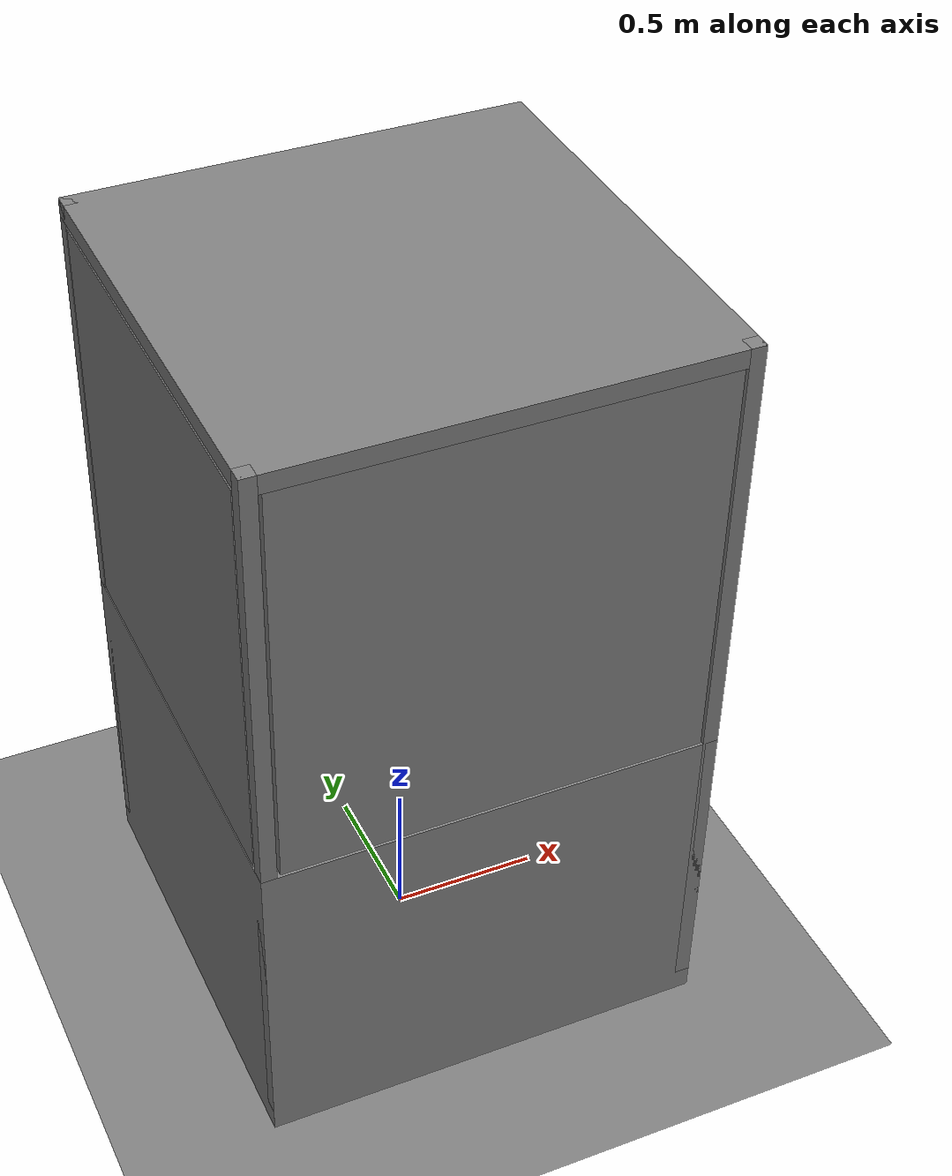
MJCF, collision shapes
<mujoco model="rack_insert_world">
  <compiler angle="radian" />
  <option gravity="0 0 -9.8" magnetic="5.5645e-06 2.28758e-05 -4.23884e-05" />
  <visual>
    <headlight ambient="0 0 0" diffuse="0 0 0" specular="0 0 0" />
  </visual>
  <default>
    <default class="world_default" />
    <default class="cable_default">
      <joint damping="0.2" />
    </default>
    <default class="sc_port_default">
      <geom friction="0.5 0.5" />
    </default>
    <default class="nic_card_default">
      <geom friction="0.1 0.005 0.1" />
    </default>
  </default>
  <extension>
    <plugin plugin="mujoco.elasticity.cable">
      <instance name="composite">
        <config key="twist" value="1e-1" />
        <config key="bend" value="1e-1" />
      </instance>
    </plugin>
  </extension>
  <asset>
    <texture type="2d" colorspace="linear" name="texture_40c09d03e70381a6858aaba3470a3c41133384b4031fa9131cbb5f4dc5cd3986_floor_visual_Plane" file="40c09d03e70381a6858aaba3470a3c41133384b4031fa9131cbb5f4dc5cd3986_floor_visual_b3a94635-54d6beff6424435d3828cb4c8a1278d9ea3964b0.png" />
    <texture type="2d" colorspace="linear" name="texture_905de86c942092710a3b3b7c801a4a971c55ce1db8e8e66de2d222bccbf68920_sc_plug_visual_merged_0" file="905de86c942092710a3b3b7c801a4a971c55ce1db8e8e66de2d222bccbf68920_sc_plug_visual_5875f865-48f62b2f4840d852c7f39a01e6c183037dc1485b.png" />
    <texture type="2d" colorspace="linear" name="texture_98c00f0bc914fd28942a5b5b497872ae817e62fdc7c7810ecaa8069a9692ceaf_lc_plug_visual_merged_0" file="98c00f0bc914fd28942a5b5b497872ae817e62fdc7c7810ecaa8069a9692ceaf_lc_plug_visual_03dabf32-0905e8a8aa368516e682f6ec84258100cdb4efef.png" />
    <texture type="2d" colorspace="linear" name="texture_bac71237ef67393fcec4e1a5deb385aa5fe0d294b7e1711efc530aa1463ef5d6_sfp_module_visual_Body.005" file="bac71237ef67393fcec4e1a5deb385aa5fe0d294b7e1711efc530aa1463ef5d6_sfp_module_visual_8fc63b58-7471eafc55dcb668ae68adfe70a147b363ba3be9.png" />
    <texture type="2d" colorspace="linear" name="texture_bac71237ef67393fcec4e1a5deb385aa5fe0d294b7e1711efc530aa1463ef5d6_sfp_module_visual_Body.005_1" file="bac71237ef67393fcec4e1a5deb385aa5fe0d294b7e1711efc530aa1463ef5d6_sfp_module_visual_1f09e86a-a4dc4a72bd6e778067310898a5c179607fd78966.png" />
    <material name="material_e35a3160deff872a7475b59ee7dfb4969f85c5fc103de22f82442b320b077c85_enclosure_visual_V1014952.001" class="world_default" shininess="30" rgba="0.290196 0.290196 0.290196 1" />
    <material name="material_e35a3160deff872a7475b59ee7dfb4969f85c5fc103de22f82442b320b077c85_enclosure_visual_V1014952.001_1" class="world_default" shininess="30" rgba="0.129412 0.129412 0.133333 1" />
    <material name="material_e35a3160deff872a7475b59ee7dfb4969f85c5fc103de22f82442b320b077c85_light_visual_Plane.001" class="world_default" shininess="30" rgba="0.5 0.5 0.5 1" />
    <material name="material_40c09d03e70381a6858aaba3470a3c41133384b4031fa9131cbb5f4dc5cd3986_floor_visual_Plane" class="world_default" texture="texture_40c09d03e70381a6858aaba3470a3c41133384b4031fa9131cbb5f4dc5cd3986_floor_visual_Plane" shininess="30" rgba="0.5 0.5 0.5 1" />
    <material name="material_40c09d03e70381a6858aaba3470a3c41133384b4031fa9131cbb5f4dc5cd3986_walls_visual_Curve.001" class="world_default" shininess="30" rgba="0.0196078 0.0196078 0.0196078 1" />
    <material name="material_40c09d03e70381a6858aaba3470a3c41133384b4031fa9131cbb5f4dc5cd3986_walls_visual_merged_1" class="world_default" shininess="30" rgba="0.262745 0.262745 0.262745 1" />
    <material name="material_40c09d03e70381a6858aaba3470a3c41133384b4031fa9131cbb5f4dc5cd3986_walls_visual_Plane.003_1" class="world_default" shininess="30" rgba="0.8 0.8 0.8 1" />
    <material name="material_40c09d03e70381a6858aaba3470a3c41133384b4031fa9131cbb5f4dc5cd3986_walls_visual_Plane.002" class="world_default" shininess="30" rgba="0.207843 0.207843 0.207843 1" />
    <material name="material_905de86c942092710a3b3b7c801a4a971c55ce1db8e8e66de2d222bccbf68920_sc_plug_visual_merged_0" class="world_default" texture="texture_905de86c942092710a3b3b7c801a4a971c55ce1db8e8e66de2d222bccbf68920_sc_plug_visual_merged_0" shininess="30" rgba="0.5 0.5 0.5 1" />
    <material name="material_98c00f0bc914fd28942a5b5b497872ae817e62fdc7c7810ecaa8069a9692ceaf_lc_plug_visual_merged_0" class="world_default" texture="texture_98c00f0bc914fd28942a5b5b497872ae817e62fdc7c7810ecaa8069a9692ceaf_lc_plug_visual_merged_0" shininess="30" rgba="0.5 0.5 0.5 1" />
    <material name="material_bac71237ef67393fcec4e1a5deb385aa5fe0d294b7e1711efc530aa1463ef5d6_sfp_module_visual_Body.005" class="world_default" texture="texture_bac71237ef67393fcec4e1a5deb385aa5fe0d294b7e1711efc530aa1463ef5d6_sfp_module_visual_Body.005" shininess="30" rgba="0.5 0.5 0.5 1" />
    <material name="material_bac71237ef67393fcec4e1a5deb385aa5fe0d294b7e1711efc530aa1463ef5d6_sfp_module_visual_Body.005_1" class="world_default" texture="texture_bac71237ef67393fcec4e1a5deb385aa5fe0d294b7e1711efc530aa1463ef5d6_sfp_module_visual_Body.005_1" shininess="30" rgba="0.5 0.5 0.5 1" />
    <material name="material_7689a9b747d6b156977e79b2206b5e29540e3d66cde22b2879e5c8aaf9f30d90_base_visual_ISO_4762_-_M3_x_8.019" class="world_default" shininess="30" rgba="0.0352941 0.0352941 0.0313726 1" />
    <material name="material_7689a9b747d6b156977e79b2206b5e29540e3d66cde22b2879e5c8aaf9f30d90_base_visual_ISO_4762_-_M3_x_8.019_1" class="world_default" shininess="30" rgba="0.0313726 0.0313726 0.0313726 1" />
    <material name="material_7689a9b747d6b156977e79b2206b5e29540e3d66cde22b2879e5c8aaf9f30d90_base_visual_ISO_4762_-_M3_x_8.019_2" class="world_default" shininess="30" rgba="0.215686 0 0.215686 1" />
    <mesh name="e35a3160deff872a7475b59ee7dfb4969f85c5fc103de22f82442b320b077c85_enclosure_visual_V1014952.001" class="world_default" content_type="model/obj" file="e35a3160deff872a7475b59ee7dfb4969f85c5fc103de22f82442b320b077c85_enclosure_visual_V1014952.001-c990efe7b9dfe87aa065fd6eb3960ce051ae2aef.obj" inertia="shell" />
    <mesh name="e35a3160deff872a7475b59ee7dfb4969f85c5fc103de22f82442b320b077c85_enclosure_visual_V1014952.001_1" class="world_default" content_type="model/obj" file="e35a3160deff872a7475b59ee7dfb4969f85c5fc103de22f82442b320b077c85_enclosure_visual_V1014952.001_1-807e07de06af157c84b994a232617507a7059420.obj" inertia="shell" />
    <mesh name="e35a3160deff872a7475b59ee7dfb4969f85c5fc103de22f82442b320b077c85_light_visual_Plane.001" class="world_default" content_type="model/obj" file="e35a3160deff872a7475b59ee7dfb4969f85c5fc103de22f82442b320b077c85_light_visual_Plane.001-a8a774a80bc239d73769a498eae528b206eebcb0.obj" inertia="shell" />
    <mesh name="40c09d03e70381a6858aaba3470a3c41133384b4031fa9131cbb5f4dc5cd3986_floor_visual_Plane" class="world_default" content_type="model/obj" file="40c09d03e70381a6858aaba3470a3c41133384b4031fa9131cbb5f4dc5cd3986_floor_visual_Plane-4dc7f6150ad7c239769a0860a01efb2015657aea.obj" inertia="shell" />
    <mesh name="40c09d03e70381a6858aaba3470a3c41133384b4031fa9131cbb5f4dc5cd3986_walls_visual_Curve.001" class="world_default" content_type="model/obj" file="40c09d03e70381a6858aaba3470a3c41133384b4031fa9131cbb5f4dc5cd3986_walls_visual_Curve.001-4d7c79ac2e958832fdb15589262141ca1b80d3a5.obj" inertia="shell" />
    <mesh name="40c09d03e70381a6858aaba3470a3c41133384b4031fa9131cbb5f4dc5cd3986_walls_visual_merged_1" class="world_default" content_type="model/obj" file="40c09d03e70381a6858aaba3470a3c41133384b4031fa9131cbb5f4dc5cd3986_walls_visual_merged_1-359a22140d528747936e80bedf90e1437a177a9f.obj" inertia="shell" />
    <mesh name="40c09d03e70381a6858aaba3470a3c41133384b4031fa9131cbb5f4dc5cd3986_walls_visual_Plane.003_1" class="world_default" content_type="model/obj" file="40c09d03e70381a6858aaba3470a3c41133384b4031fa9131cbb5f4dc5cd3986_walls_visual_Plane.003_1-cd05ed21fa19a2784fb772d7519abf7c31c8b85f.obj" inertia="shell" />
    <mesh name="40c09d03e70381a6858aaba3470a3c41133384b4031fa9131cbb5f4dc5cd3986_walls_visual_Plane.002" class="world_default" content_type="model/obj" file="40c09d03e70381a6858aaba3470a3c41133384b4031fa9131cbb5f4dc5cd3986_walls_visual_Plane.002-ee4f781765eec46c2256d941981732d4b1857f24.obj" inertia="shell" />
    <mesh name="905de86c942092710a3b3b7c801a4a971c55ce1db8e8e66de2d222bccbf68920_sc_plug_visual_merged_0" class="world_default" content_type="model/obj" file="905de86c942092710a3b3b7c801a4a971c55ce1db8e8e66de2d222bccbf68920_sc_plug_visual_merged_0-67f94accf247f722dd4954d7448d7956402901f2.obj" inertia="shell" />
    <mesh name="98c00f0bc914fd28942a5b5b497872ae817e62fdc7c7810ecaa8069a9692ceaf_lc_plug_visual_merged_0" class="world_default" content_type="model/obj" file="98c00f0bc914fd28942a5b5b497872ae817e62fdc7c7810ecaa8069a9692ceaf_lc_plug_visual_merged_0-fdaf59710fc3cc118a7df05add4ff4205edda4ef.obj" inertia="shell" />
    <mesh name="bac71237ef67393fcec4e1a5deb385aa5fe0d294b7e1711efc530aa1463ef5d6_sfp_module_visual_Body.005" class="world_default" content_type="model/obj" file="bac71237ef67393fcec4e1a5deb385aa5fe0d294b7e1711efc530aa1463ef5d6_sfp_module_visual_Body.005-f93147e1e403de321fb70c06a4b1e00f20feb9fd.obj" inertia="shell" />
    <mesh name="bac71237ef67393fcec4e1a5deb385aa5fe0d294b7e1711efc530aa1463ef5d6_sfp_module_visual_Body.005_1" class="world_default" content_type="model/obj" file="bac71237ef67393fcec4e1a5deb385aa5fe0d294b7e1711efc530aa1463ef5d6_sfp_module_visual_Body.005_1-4af964a95522e2593eb6381eca4f09ef239782c7.obj" inertia="shell" />
    <mesh name="7689a9b747d6b156977e79b2206b5e29540e3d66cde22b2879e5c8aaf9f30d90_base_visual_ISO_4762_-_M3_x_8.019" class="world_default" content_type="model/obj" file="7689a9b747d6b156977e79b2206b5e29540e3d66cde22b2879e5c8aaf9f30d90_base_visual_ISO_4762_-_M3_x_8.019-f814bb518c42769543ab6246809f3fe4af5c2b64.obj" inertia="shell" />
    <mesh name="7689a9b747d6b156977e79b2206b5e29540e3d66cde22b2879e5c8aaf9f30d90_base_visual_ISO_4762_-_M3_x_8.019_1" class="world_default" content_type="model/obj" file="7689a9b747d6b156977e79b2206b5e29540e3d66cde22b2879e5c8aaf9f30d90_base_visual_ISO_4762_-_M3_x_8.019_1-0b276ba9910a7642121235b62d2afc47c3995782.obj" inertia="shell" />
    <mesh name="7689a9b747d6b156977e79b2206b5e29540e3d66cde22b2879e5c8aaf9f30d90_base_visual_ISO_4762_-_M3_x_8.019_2" class="world_default" content_type="model/obj" file="7689a9b747d6b156977e79b2206b5e29540e3d66cde22b2879e5c8aaf9f30d90_base_visual_ISO_4762_-_M3_x_8.019_2-7b96569be9572803417c5650ee83c9c883b44191.obj" inertia="shell" />
  </asset>
  <worldbody>
    <light name="enclosure_light" class="world_default" pos="0 0 2.5" dir="0 0 -1" intensity="0.4" range="2" attenuation="1 0.01 0.001" cutoff="114.592" exponent="0.993023" diffuse="1 1 1" specular="0.1 0.1 0.1" />
    <light name="ceiling_01" class="world_default" pos="2 2 6" dir="0 0 -1" intensity="2" range="9" castshadow="false" attenuation="1 0.01 0.001" cutoff="360" diffuse="1 1 1" specular="0.1 0.1 0.1" />
    <light name="ceiling_02" class="world_default" pos="-2 -2 6" dir="0 0 -1" intensity="2" range="9" castshadow="false" attenuation="1 0.01 0.001" cutoff="360" diffuse="1 1 1" specular="0.1 0.1 0.1" />
    <body name="enclosure_link">
      <inertial pos="0 0 0" mass="1" diaginertia="1 1 1" />
      <geom name="v1015026001_collider_box" class="world_default" size="0.75 0.569492 0.75" pos="-0.010998 0.009283 0.569706" quat="1.22475e-07 -1.22474e-07 0.707107 0.707107" type="box" group="3" />
      <geom name="v1015028001_collider_box" class="world_default" size="0.0254 0.0254 1.25" pos="0.713602 0.733883 1.3292" quat="1.73205e-07 0 0 -1" type="box" group="3" />
      <geom name="v1015013001_collider_box" class="world_default" size="0.0304 0.75 0.75" pos="-0.010998 0.009283 2.5488" quat="0.707107 0 -0.707107 0" type="box" group="3" />
      <geom name="v1015027_collider_box" class="world_default" size="0.0254 0.0254 1.25" pos="-0.735598 0.733883 1.3292" quat="1.73205e-07 0 0 -1" type="box" group="3" />
      <geom name="v1015029_collider_box" class="world_default" size="0.0254 0.0254 1.25" pos="-0.735598 -0.715317 1.3292" quat="0 1.73205e-07 -1 -1.73205e-07" type="box" group="3" />
      <geom name="v1015030_collider_box" class="world_default" size="0.0254 0.0254 1.25" pos="0.713602 -0.715317 1.3292" quat="1.73205e-07 0 0 -1" type="box" group="3" />
      <geom name="enclosure_visual" class="world_default" type="mesh" contype="0" conaffinity="0" material="material_e35a3160deff872a7475b59ee7dfb4969f85c5fc103de22f82442b320b077c85_enclosure_visual_V1014952.001" mesh="e35a3160deff872a7475b59ee7dfb4969f85c5fc103de22f82442b320b077c85_enclosure_visual_V1014952.001" />
      <geom name="enclosure_visual_0" class="world_default" type="mesh" contype="0" conaffinity="0" material="material_e35a3160deff872a7475b59ee7dfb4969f85c5fc103de22f82442b320b077c85_enclosure_visual_V1014952.001_1" mesh="e35a3160deff872a7475b59ee7dfb4969f85c5fc103de22f82442b320b077c85_enclosure_visual_V1014952.001_1" />
      <geom name="light_visual" class="world_default" type="mesh" contype="0" conaffinity="0" material="material_e35a3160deff872a7475b59ee7dfb4969f85c5fc103de22f82442b320b077c85_light_visual_Plane.001" mesh="e35a3160deff872a7475b59ee7dfb4969f85c5fc103de22f82442b320b077c85_light_visual_Plane.001" />
    </body>
    <body name="enclosure_walls_link">
      <inertial pos="0 0 0" mass="1" diaginertia="1 1 1" />
      <geom name="v1015062006_collider_box" class="world_default" size="0.0250005 0.6796 0.6892" pos="-0.010998 0.734284 1.8288" quat="0.5 0.5 -0.5 -0.5" type="box" group="3" />
      <geom name="v1015062005_collider_box" class="world_default" size="0.6892 0.6796 0.025" pos="-0.735998 0.009283 1.8288" quat="0.5 0.5 -0.5 -0.5" type="box" group="3" />
      <geom name="v1015062007_collider_box" class="world_default" size="0.025 0.6846 0.6892" pos="-0.010998 -0.715717 1.8338" quat="0.5 0.5 -0.5 -0.5" type="box" group="3" />
      <geom name="v1015062008_collider_box" class="world_default" size="0.6892 0.6846 0.025" pos="0.714002 0.009283 1.8338" quat="0.5 0.5 -0.5 -0.5" type="box" group="3" />
    </body>
    <body name="floor_link">
      <inertial pos="0 0 0" mass="1" diaginertia="1 1 1" />
      <geom name="floor_cylinder" class="world_default" size="5 5 1" type="plane" group="3" />
      <geom name="floor_visual" class="world_default" type="mesh" contype="0" conaffinity="0" material="material_40c09d03e70381a6858aaba3470a3c41133384b4031fa9131cbb5f4dc5cd3986_floor_visual_Plane" mesh="40c09d03e70381a6858aaba3470a3c41133384b4031fa9131cbb5f4dc5cd3986_floor_visual_Plane" />
      <geom name="walls_visual" class="world_default" type="mesh" contype="0" conaffinity="0" material="material_40c09d03e70381a6858aaba3470a3c41133384b4031fa9131cbb5f4dc5cd3986_walls_visual_Curve.001" mesh="40c09d03e70381a6858aaba3470a3c41133384b4031fa9131cbb5f4dc5cd3986_walls_visual_Curve.001" />
      <geom name="walls_visual_0" class="world_default" type="mesh" contype="0" conaffinity="0" material="material_40c09d03e70381a6858aaba3470a3c41133384b4031fa9131cbb5f4dc5cd3986_walls_visual_merged_1" mesh="40c09d03e70381a6858aaba3470a3c41133384b4031fa9131cbb5f4dc5cd3986_walls_visual_merged_1" />
      <geom name="walls_visual_1" class="world_default" type="mesh" contype="0" conaffinity="0" material="material_40c09d03e70381a6858aaba3470a3c41133384b4031fa9131cbb5f4dc5cd3986_walls_visual_Plane.003_1" mesh="40c09d03e70381a6858aaba3470a3c41133384b4031fa9131cbb5f4dc5cd3986_walls_visual_Plane.003_1" />
      <geom name="walls_visual_2" class="world_default" type="mesh" contype="0" conaffinity="0" material="material_40c09d03e70381a6858aaba3470a3c41133384b4031fa9131cbb5f4dc5cd3986_walls_visual_Plane.002" mesh="40c09d03e70381a6858aaba3470a3c41133384b4031fa9131cbb5f4dc5cd3986_walls_visual_Plane.002" />
    </body>
    <body name="cable_end_0" childclass="cable_default" pos="0.171400 0.020606 1.511889" quat="0.712741 0.312130 -0.052173 0.625982">
      <freejoint name="cable_end_0_free" />
      <inertial pos="0 0 0" mass="0.02" diaginertia="1e-4 1e-4 1e-4" />
      <geom name="base_vis" class="world_default" size="0.002" contype="0" conaffinity="0" />
      <plugin instance="composite" />
      <body name="cable_connection_0" pos="-1.8524e-08 2.73248e-08 -1.48787e-07" quat="0.9248 -0.0904332 -0.328901 0.168499">
        <inertial pos="0 0 0" mass="0.02" diaginertia="1e-4 1e-4 1e-4" />
        <joint name="joint_connection_end_0" class="world_default" pos="0 0 0" type="ball" damping="5.0" armature="0.02" />
        <geom name="visual_0_0" class="world_default" size="0.001 0.00180278" pos="-0.00180278 0.002 0" quat="0.676768 0.204909 0.676764 -0.204908" type="cylinder" contype="0" conaffinity="0" />
        <geom name="visual_1_0" class="world_default" size="0.001 0.00180278" pos="-0.00180278 -0.002 0" quat="0.676768 -0.204909 0.676764 0.204908" type="cylinder" contype="0" conaffinity="0" />
        <plugin instance="composite" />
        <body name="link_1" pos="0.00205186 -0.00581232 -0.0231951" quat="-0.0744432 -0.267353 -0.954856 0.105971">
          <inertial pos="0 0 0" mass="0.02" diaginertia="1e-4 1e-4 1e-4" />
          <joint name="joint_end_0" pos="0 0 -0.024" type="ball" damping="5.0" armature="0.02" />
          <geom name="link_1_collision" size="0.002 0.018" pos="0 0 0.006" type="cylinder" group="3" contype="0" conaffinity="0" />
          <geom name="sphere_1_collision" size="0.002" pos="0 0 0.024" group="3" contype="0" conaffinity="0" />
          <geom name="link_1_vis" size="0.002 0.024" type="cylinder" contype="0" conaffinity="0" />
          <geom name="sphere_1_vis" size="0.002" pos="0 0 0.024" contype="0" conaffinity="0" />
          <plugin instance="composite" />
          <body name="link_2" pos="0.0062321 -0.00759539 0.0458972" quat="0.977617 0.158903 0.136252 -0.0212152">
            <inertial pos="0 0 0" mass="0.02" diaginertia="1e-4 1e-4 1e-4" />
            <joint name="joint_1" pos="0 0 -0.024" type="ball" damping="5.0" armature="0.02" />
            <geom name="link_2_collision" size="0.002 0.024" type="cylinder" group="3" contype="0" conaffinity="0" />
            <geom name="sphere_2_collision" size="0.002" pos="0 0 0.024" group="3" contype="0" conaffinity="0" />
            <geom name="link_2_vis" size="0.002 0.024" type="cylinder" contype="0" conaffinity="0" />
            <geom name="sphere_2_vis" size="0.002" pos="0 0 0.024" contype="0" conaffinity="0" />
            <plugin instance="composite" />
            <body name="link_3" pos="0.000485798 -0.00664492 0.047057" quat="0.989888 0.139556 0.0132688 -0.0216709">
              <inertial pos="0 0 0" mass="0.02" diaginertia="1e-4 1e-4 1e-4" />
              <joint name="joint_2" pos="0 0 -0.024" type="ball" damping="5.0" armature="0.02" />
              <geom name="link_3_collision" size="0.002 0.024" type="cylinder" group="3" contype="0" conaffinity="0" />
              <geom name="sphere_3_collision" size="0.002" pos="0 0 0.024" group="3" contype="0" conaffinity="0" />
              <geom name="link_3_vis" size="0.002 0.024" type="cylinder" contype="0" conaffinity="0" />
              <geom name="sphere_3_vis" size="0.002" pos="0 0 0.024" contype="0" conaffinity="0" />
              <plugin instance="composite" />
              <body name="link_4" pos="-0.00211159 -0.00462199 0.047456" quat="0.994006 0.0979169 -0.0418164 -0.0248097">
                <inertial pos="0 0 0" mass="0.02" diaginertia="1e-4 1e-4 1e-4" />
                <joint name="joint_3" pos="0 0 -0.024" type="ball" damping="5.0" armature="0.02" />
                <geom name="link_4_collision" size="0.002 0.024" type="cylinder" group="3" contype="0" conaffinity="0" />
                <geom name="sphere_4_collision" size="0.002" pos="0 0 0.024" group="3" contype="0" conaffinity="0" />
                <geom name="link_4_vis" size="0.002 0.024" type="cylinder" contype="0" conaffinity="0" />
                <geom name="sphere_4_vis" size="0.002" pos="0 0 0.024" contype="0" conaffinity="0" />
                <plugin instance="composite" />
                <body name="link_5" pos="-0.00360727 -0.00308924 0.0475259" quat="0.994235 0.0676726 -0.0728528 -0.0401242">
                  <inertial pos="0 0 0" mass="0.02" diaginertia="1e-4 1e-4 1e-4" />
                  <joint name="joint_4" pos="0 0 -0.024" type="ball" damping="5.0" armature="0.02" />
                  <geom name="link_5_collision" size="0.002 0.024" type="cylinder" group="3" contype="0" conaffinity="0" />
                  <geom name="sphere_5_collision" size="0.002" pos="0 0 0.024" group="3" contype="0" conaffinity="0" />
                  <geom name="link_5_vis" size="0.002 0.024" type="cylinder" contype="0" conaffinity="0" />
                  <geom name="sphere_5_vis" size="0.002" pos="0 0 0.024" contype="0" conaffinity="0" />
                  <plugin instance="composite" />
                  <body name="link_6" pos="-0.00394646 -0.00175212 0.0476086" quat="0.993902 0.0418257 -0.0800811 -0.0632118">
                    <inertial pos="0 0 0" mass="0.02" diaginertia="1e-4 1e-4 1e-4" />
                    <joint name="joint_5" pos="0 0 -0.024" type="ball" damping="5.0" armature="0.02" />
                    <geom name="link_6_collision" size="0.002 0.024" type="cylinder" group="3" contype="0" conaffinity="0" />
                    <geom name="sphere_6_collision" size="0.002" pos="0 0 0.024" group="3" contype="0" conaffinity="0" />
                    <geom name="link_6_vis" size="0.002 0.024" type="cylinder" contype="0" conaffinity="0" />
                    <geom name="sphere_6_vis" size="0.002" pos="0 0 0.024" contype="0" conaffinity="0" />
                    <plugin instance="composite" />
                    <body name="link_7" pos="-0.00349132 -0.000684072 0.0477354" quat="0.993462 0.0205693 -0.0714237 -0.086657">
                      <inertial pos="0 0 0" mass="0.02" diaginertia="1e-4 1e-4 1e-4" />
                      <joint name="joint_6" pos="0 0 -0.024" type="ball" damping="5.0" armature="0.02" />
                      <geom name="link_7_collision" size="0.002 0.024" type="cylinder" group="3" contype="0" conaffinity="0" />
                      <geom name="sphere_7_collision" size="0.002" pos="0 0 0.024" group="3" contype="0" conaffinity="0" />
                      <geom name="link_7_vis" size="0.002 0.024" type="cylinder" contype="0" conaffinity="0" />
                      <geom name="sphere_7_vis" size="0.002" pos="0 0 0.024" contype="0" conaffinity="0" />
                      <plugin instance="composite" />
                      <body name="link_8" pos="-0.00242918 0.000196203 0.0478767" quat="0.993478 0.00110202 -0.05083 -0.10206">
                        <inertial pos="0 0 0" mass="0.02" diaginertia="1e-4 1e-4 1e-4" />
                        <joint name="joint_7" pos="0 0 -0.024" type="ball" damping="5.0" armature="0.02" />
                        <geom name="link_8_collision" size="0.002 0.024" type="cylinder" group="3" contype="0" conaffinity="0" />
                        <geom name="sphere_8_collision" size="0.002" pos="0 0 0.024" group="3" contype="0" conaffinity="0" />
                        <geom name="link_8_vis" size="0.002 0.024" type="cylinder" contype="0" conaffinity="0" />
                        <geom name="sphere_8_vis" size="0.002" pos="0 0 0.024" contype="0" conaffinity="0" />
                        <plugin instance="composite" />
                        <body name="link_9" pos="-0.00121951 0.000962199 0.0479508" quat="0.994021 -0.0172992 -0.0273717 -0.104277">
                          <inertial pos="0 0 0" mass="0.02" diaginertia="1e-4 1e-4 1e-4" />
                          <joint name="joint_8" pos="0 0 -0.024" type="ball" damping="5.0" armature="0.02" />
                          <geom name="link_9_collision" size="0.002 0.024" type="cylinder" group="3" contype="0" conaffinity="0" />
                          <geom name="sphere_9_collision" size="0.002" pos="0 0 0.024" group="3" contype="0" conaffinity="0" />
                          <geom name="link_9_vis" size="0.002 0.024" type="cylinder" contype="0" conaffinity="0" />
                          <geom name="sphere_9_vis" size="0.002" pos="0 0 0.024" contype="0" conaffinity="0" />
                          <plugin instance="composite" />
                          <body name="link_10" pos="-0.000352384 0.00168129 0.0479388" quat="0.994798 -0.0341671 -0.0106664 -0.0953733">
                            <inertial pos="0 0 0" mass="0.02" diaginertia="1e-4 1e-4 1e-4" />
                            <joint name="joint_9" pos="0 0 -0.024" type="ball" damping="5.0" armature="0.02" />
                            <geom name="link_10_collision" size="0.002 0.024" type="cylinder" group="3" contype="0" conaffinity="0" />
                            <geom name="sphere_10_collision" size="0.002" pos="0 0 0.024" group="3" contype="0" conaffinity="0" />
                            <geom name="link_10_vis" size="0.002 0.024" type="cylinder" contype="0" conaffinity="0" />
                            <geom name="sphere_10_vis" size="0.002" pos="0 0 0.024" contype="0" conaffinity="0" />
                            <plugin instance="composite" />
                            <body name="link_11" pos="0.0011926 0.00255556 0.0478347" quat="0.994063 -0.0553913 0.0198854 -0.0915176">
                              <inertial pos="0 0 0" mass="0.02" diaginertia="1e-4 1e-4 1e-4" />
                              <joint name="joint_10" pos="0 0 -0.024" type="ball" damping="5.0" armature="0.02" />
                              <geom name="link_11_collision" size="0.002 0.024" type="cylinder" group="3" contype="0" conaffinity="0" />
                              <geom name="sphere_11_collision" size="0.002" pos="0 0 0.024" group="3" contype="0" conaffinity="0" />
                              <geom name="link_11_vis" size="0.002 0.024" type="cylinder" contype="0" conaffinity="0" />
                              <geom name="sphere_11_vis" size="0.002" pos="0 0 0.024" contype="0" conaffinity="0" />
                              <plugin instance="composite" />
                              <body name="link_12" pos="0.00318942 0.00406347 0.0474392" quat="0.991784 -0.08954 0.0608389 -0.0681569">
                                <inertial pos="0 0 0" mass="0.02" diaginertia="1e-4 1e-4 1e-4" />
                                <joint name="joint_11" pos="0 0 -0.024" type="ball" damping="5.0" armature="0.02" />
                                <geom name="link_12_collision" size="0.002 0.024" type="cylinder" group="3" contype="0" conaffinity="0" />
                                <geom name="sphere_12_collision" size="0.002" pos="0 0 0.024" group="3" contype="0" conaffinity="0" />
                                <geom name="link_12_vis" size="0.002 0.024" type="cylinder" contype="0" conaffinity="0" />
                                <geom name="sphere_12_vis" size="0.002" pos="0 0 0.024" contype="0" conaffinity="0" />
                                <plugin instance="composite" />
                                <body name="link_13" pos="0.00474762 0.00581684 0.046796" quat="0.986519 -0.126788 0.0949622 -0.0410768">
                                  <inertial pos="0 0 0" mass="0.02" diaginertia="1e-4 1e-4 1e-4" />
                                  <joint name="joint_12" pos="0 0 -0.024" type="ball" damping="5.0" armature="0.02" />
                                  <geom name="link_13_collision" size="0.002 0.024" type="cylinder" group="3" contype="0" conaffinity="0" />
                                  <geom name="sphere_13_collision" size="0.002" pos="0 0 0.024" group="3" contype="0" conaffinity="0" />
                                  <geom name="link_13_vis" size="0.002 0.024" type="cylinder" contype="0" conaffinity="0" />
                                  <geom name="sphere_13_vis" size="0.002" pos="0 0 0.024" contype="0" conaffinity="0" />
                                  <plugin instance="composite" />
                                  <body name="link_14" pos="0.00584192 0.00736005 0.0460848" quat="0.979733 -0.158297 0.121886 -0.0144322">
                                    <inertial pos="0 0 0" mass="0.02" diaginertia="1e-4 1e-4 1e-4" />
                                    <joint name="joint_13" pos="0 0 -0.024" type="ball" damping="5.0" armature="0.02" />
                                    <geom name="link_14_collision" size="0.002 0.024" type="cylinder" group="3" contype="0" conaffinity="0" />
                                    <geom name="sphere_14_collision" size="0.002" pos="0 0 0.024" group="3" contype="0" conaffinity="0" />
                                    <geom name="link_14_vis" size="0.002 0.024" type="cylinder" contype="0" conaffinity="0" />
                                    <geom name="sphere_14_vis" size="0.002" pos="0 0 0.024" contype="0" conaffinity="0" />
                                    <plugin instance="composite" />
                                    <body name="link_15" pos="0.00657267 0.00808198 0.045622" quat="0.974868 -0.171346 0.142081 0.00931882">
                                      <inertial pos="0 0 0" mass="0.02" diaginertia="1e-4 1e-4 1e-4" />
                                      <joint name="joint_14" pos="0 0 -0.024" type="ball" damping="5.0" armature="0.02" />
                                      <geom name="link_15_collision" size="0.002 0.024" type="cylinder" group="3" contype="0" conaffinity="0" />
                                      <geom name="sphere_15_collision" size="0.002" pos="0 0 0.024" group="3" contype="0" conaffinity="0" />
                                      <geom name="link_15_vis" size="0.002 0.024" type="cylinder" contype="0" conaffinity="0" />
                                      <geom name="sphere_15_vis" size="0.002" pos="0 0 0.024" contype="0" conaffinity="0" />
                                      <plugin instance="composite" />
                                      <body name="link_16" pos="0.00686044 0.00762064 0.0457007" quat="0.975339 -0.158465 0.151069 0.0279269">
                                        <inertial pos="0 0 0" mass="0.02" diaginertia="1e-4 1e-4 1e-4" />
                                        <joint name="joint_15" pos="0 0 -0.024" type="ball" damping="5.0" armature="0.02" />
                                        <geom name="link_16_collision" size="0.002 0.024" type="cylinder" group="3" contype="0" conaffinity="0" />
                                        <geom name="sphere_16_collision" size="0.002" pos="0 0 0.024" group="3" contype="0" conaffinity="0" />
                                        <geom name="link_16_vis" size="0.002 0.024" type="cylinder" contype="0" conaffinity="0" />
                                        <geom name="sphere_16_vis" size="0.002" pos="0 0 0.024" contype="0" conaffinity="0" />
                                        <plugin instance="composite" />
                                        <body name="link_17" pos="0.0067763 0.0060346 0.0462203" quat="0.980462 -0.122141 0.14894 0.0399147">
                                          <inertial pos="0 0 0" mass="0.02" diaginertia="1e-4 1e-4 1e-4" />
                                          <joint name="joint_16" pos="0 0 -0.024" type="ball" damping="5.0" armature="0.02" />
                                          <geom name="link_17_collision" size="0.002 0.024" type="cylinder" group="3" contype="0" conaffinity="0" />
                                          <geom name="sphere_17_collision" size="0.002" pos="0 0 0.024" group="3" contype="0" conaffinity="0" />
                                          <geom name="link_17_vis" size="0.002 0.024" type="cylinder" contype="0" conaffinity="0" />
                                          <geom name="sphere_17_vis" size="0.002" pos="0 0 0.024" contype="0" conaffinity="0" />
                                          <plugin instance="composite" />
                                          <body name="link_18" pos="0.00641562 0.00358921 0.0468465" quat="0.986933 -0.0695799 0.138534 0.0439281">
                                            <inertial pos="0 0 0" mass="0.02" diaginertia="1e-4 1e-4 1e-4" />
                                            <joint name="joint_17" pos="0 0 -0.024" type="ball" damping="5.0" armature="0.02" />
                                            <geom name="link_18_collision" size="0.002 0.024" type="cylinder" group="3" contype="0" conaffinity="0" />
                                            <geom name="sphere_18_collision" size="0.002" pos="0 0 0.024" group="3" contype="0" conaffinity="0" />
                                            <geom name="link_18_vis" size="0.002 0.024" type="cylinder" contype="0" conaffinity="0" />
                                            <geom name="sphere_18_vis" size="0.002" pos="0 0 0.024" contype="0" conaffinity="0" />
                                            <plugin instance="composite" />
                                            <body name="link_19" pos="0.00642308 0.00141599 0.0470824" quat="0.989636 -0.0245355 0.136167 0.0384225">
                                              <inertial pos="0 0 0" mass="0.02" diaginertia="1e-4 1e-4 1e-4" />
                                              <joint name="joint_18" pos="0 0 -0.024" type="ball" damping="5.0" armature="0.02" />
                                              <geom name="link_19_collision" size="0.002 0.024" type="cylinder" group="3" contype="0" conaffinity="0" />
                                              <geom name="sphere_19_collision" size="0.002" pos="0 0 0.024" group="3" contype="0" conaffinity="0" />
                                              <geom name="link_19_vis" size="0.002 0.024" type="cylinder" contype="0" conaffinity="0" />
                                              <geom name="sphere_19_vis" size="0.002" pos="0 0 0.024" contype="0" conaffinity="0" />
                                              <plugin instance="composite" />
                                              <body name="link_20" pos="0.00596189 -0.001022 0.0472272" quat="0.991501 0.0250074 0.124547 0.0280764">
                                                <inertial pos="0 0 0" mass="0.02" diaginertia="1e-4 1e-4 1e-4" />
                                                <joint name="joint_19" pos="0 0 -0.024" type="ball" damping="5.0" armature="0.02" />
                                                <geom name="link_20_collision" size="0.002 0.024" type="cylinder" group="3" contype="0" conaffinity="0" />
                                                <geom name="sphere_20_collision" size="0.002" pos="0 0 0.024" group="3" contype="0" conaffinity="0" />
                                                <geom name="link_20_vis" size="0.002 0.024" type="cylinder" contype="0" conaffinity="0" />
                                                <geom name="sphere_20_vis" size="0.002" pos="0 0 0.024" contype="0" conaffinity="0" />
                                                <plugin instance="composite" />
                                                <body name="cable_connection_1" pos="9.99887e-07 -2.74921e-07 0.0240002" quat="0.778154 0.0587225 -0.624071 -0.0395492">
                                                  <inertial pos="0 0 0" mass="0.02" diaginertia="1e-4 1e-4 1e-4" />
                                                  <joint name="joint_connection_end_1" class="world_default" pos="0 0 0" type="ball" damping="5.0" armature="0.02" />
                                                  <geom name="collision_0" class="world_default" size="0.001 0.00367636" pos="0.00367636 -0.00425 0" quat="0.673802 0.214463 0.673798 -0.214461" type="cylinder" group="3" contype="0" conaffinity="0" />
                                                  <geom name="collision_1" class="world_default" size="0.001 0.00367636" pos="0.00367636 0.00425 0" quat="0.673802 -0.214463 0.673798 0.214461" type="cylinder" group="3" contype="0" conaffinity="0" />
                                                  <geom name="visual_0" class="world_default" size="0.001 0.00367636" pos="0.00367636 -0.00425 0" quat="0.673802 0.214463 0.673798 -0.214461" type="cylinder" contype="0" conaffinity="0" />
                                                  <geom name="visual_1" class="world_default" size="0.001 0.00367636" pos="0.00367636 0.00425 0" quat="0.673802 -0.214463 0.673798 0.214461" type="cylinder" contype="0" conaffinity="0" />
                                                  <plugin instance="composite" />
                                                  <body name="sc_plug_link" pos="0.052 -2.21531e-08 -5.85357e-08" quat="1 -6.79049e-08 -1.84851e-08 2.05158e-07">
                                                    <inertial pos="-0.00907511 4.9566e-05 8.71699e-06" quat="0.000872542 0.70691 -0.000868656 0.707302" mass="0.04" diaginertia="1e-4 1e-4 1e-4" />
                                                    <geom name="housing blue_predeterminado005_collider_box" class="world_default" size="0.0063605 0.0045 0.00365" pos="0.002038 0.006344 4e-06" type="box" group="3" />
                                                    <geom name="housing blue_predeterminado005_collider_box.001" class="world_default" size="0.0063605 0.0045 0.00365" pos="0.002038 -0.006344 4e-06" type="box" group="3" />
                                                    <geom name="housing blue_predeterminado005_collider_box.002" class="world_default" size="0.006861 0.0035 0.00365" pos="0.002539 0.006344 4e-06" type="box" group="3" />
                                                    <geom name="housing blue_predeterminado005_collider_box.003" class="world_default" size="0.006861 0.0035 0.00365" pos="0.002539 -0.006344 4e-06" type="box" group="3" />
                                                    <geom name="housing blue_predeterminado005_collider_box.004" class="world_default" size="0.001 0.000705 0.00365" pos="0.008191 0.003056 4e-06" quat="0.92388 0 0 -0.382683" type="box" group="3" />
                                                    <geom name="housing blue_predeterminado005_collider_box.005" class="world_default" size="0.001 0.000705 0.00365" pos="0.008191 0.009636 4e-06" quat="0.92388 0 0 0.382683" type="box" group="3" />
                                                    <geom name="housing blue_predeterminado005_collider_box.006" class="world_default" size="0.001 0.000705 0.00365" pos="0.008191 -0.009636 4e-06" quat="0.92388 0 0 -0.382683" type="box" group="3" />
                                                    <geom name="housing blue_predeterminado005_collider_box.007" class="world_default" size="0.001 0.000705 0.00365" pos="0.008191 -0.003056 4e-06" quat="0.92388 0 0 0.382683" type="box" group="3" />
                                                    <geom name="cube002_collider_box" class="world_default" size="0.006275 0.0125 0.00505" pos="-0.010291 0 0" type="box" group="3" />
                                                    <geom name="cylinder011_collider_cylinder" class="world_default" size="0.0029 0.014605" pos="-0.031147 -0.00635 0" quat="0.707107 0 0.707107 0" type="cylinder" group="3" />
                                                    <geom name="cylinder005_collider_cylinder" class="world_default" size="0.0029 0.015799" pos="-0.029953 0.00635 0" quat="0.707107 0 0.707107 0" type="cylinder" group="3" />
                                                    <geom name="ferula_predeterminado005_collider_cylinder" class="world_default" size="0.00125 0.007" pos="0.00465 -0.00635 0" quat="0.707107 0 0.707107 0" type="cylinder" group="3" />
                                                    <geom name="ferula_predeterminado003_collider_cylinder" class="world_default" size="0.00125 0.007" pos="0.00465 0.00635 0" quat="0.707107 0 0.707107 0" type="cylinder" group="3" />
                                                    <geom name="side_box_collision" class="world_default" size="0.002125 0.00081 0.0005" pos="0.00146 -0.00632 0.0042" type="box" group="3" />
                                                    <geom name="side_box_collision_2" class="world_default" size="0.002125 0.00081 0.0005" pos="0.00146 0.00632 0.0042" type="box" group="3" />
                                                    <geom name="sc_plug_visual" class="world_default" type="mesh" contype="0" conaffinity="0" material="material_905de86c942092710a3b3b7c801a4a971c55ce1db8e8e66de2d222bccbf68920_sc_plug_visual_merged_0" mesh="905de86c942092710a3b3b7c801a4a971c55ce1db8e8e66de2d222bccbf68920_sc_plug_visual_merged_0" />
                                                    <body name="sc_tip_link" pos="0.0116501 3.52324e-09 1.23046e-07" quat="0.499998 -0.5 0.500001 -0.5">
                                                      <inertial pos="0 0 0" mass="0.02" diaginertia="1e-4 1e-4 1e-4" />
                                                      <site name="plug_tip" pos="0 0 0" size="0.004" rgba="1 0 0 1" />
                                                    </body>
                                                  </body>
                                                </body>
                                              </body>
                                            </body>
                                          </body>
                                        </body>
                                      </body>
                                    </body>
                                  </body>
                                </body>
                              </body>
                            </body>
                          </body>
                        </body>
                      </body>
                    </body>
                  </body>
                </body>
              </body>
            </body>
          </body>
        </body>
        <body name="lc_plug_link" pos="-0.041 6.76849e-10 8.32619e-09" quat="0.707109 2.68873e-08 -1.5814e-09 0.707105">
          <inertial pos="0 0.0197 0" quat="0 0.707107 0 0.707107" mass="0.02" diaginertia="1e-4 1e-4 1e-4" />
          <geom name="cylinder001_collider_cylinder.001" class="world_default" size="0.000625 0.001502" pos="0.003125 0.0197 0" quat="0.707107 0.707107 0 0" type="cylinder" group="3" />
          <geom name="cylinder_collider_cylinder.001" class="world_default" size="0.000625 0.001502" pos="-0.003125 0.0197 0" quat="0.707107 0.707107 0 0" type="cylinder" group="3" />
          <geom name="lc_plug_visual" class="world_default" type="mesh" contype="0" conaffinity="0" material="material_98c00f0bc914fd28942a5b5b497872ae817e62fdc7c7810ecaa8069a9692ceaf_lc_plug_visual_merged_0" mesh="98c00f0bc914fd28942a5b5b497872ae817e62fdc7c7810ecaa8069a9692ceaf_lc_plug_visual_merged_0" />
          <body name="sfp_module_link" pos="-9.55621e-10 0.0384 5.82254e-09" quat="2.64996e-08 1 -1.24388e-06 -1.35967e-06">
            <inertial pos="0.00024115 0.00702224 0.000553372" quat="0.510037 0.497012 -0.483415 0.50907" mass="0.02" diaginertia="1e-4 1e-4 1e-4" />
            <geom name="port_collider_box.008" class="world_default" size="0.00071 0.000503 0.0064415" pos="-0.00571 0.018813 -0.003546" quat="0.707107 0.707107 0 0" type="box" group="3" />
            <geom name="port_collider_box.009" class="world_default" size="0.00071 0.000503 0.0064415" pos="0.00571 0.018813 -0.003546" quat="0.707107 0.707107 0 0" type="box" group="3" />
            <geom name="body_collider_box" class="world_default" size="0.006875 0.02365 0.0003945" pos="0 0.001 0.00383" type="box" group="3" />
            <geom name="body_collider_box.001" class="world_default" size="0.006875 0.02365 8.9e-05" pos="0 0.001 -0.004138" type="box" group="3" />
            <geom name="body_collider_box.002" class="world_default" size="0.000287 0.02365 0.004225" pos="-0.006588 0.001 0" type="box" group="3" />
            <geom name="body_collider_box.003" class="world_default" size="0.0004055 0.02365 0.004225" pos="0.00647 0.001 0" type="box" group="3" />
            <geom name="port_collider_box.010" class="world_default" size="0.00642 0.0038815 0.0058645" pos="0 0.01229 0.000119" quat="0.707107 0.707107 0 0" type="box" group="3" />
            <geom name="port_collider_box002_collider_box" class="world_default" size="0.00642 0.0002045 0.0008005" pos="0 0.024453 -0.004254" quat="0.707107 0.707107 0 0" type="box" group="3" />
            <geom name="port_collider_box.011" class="world_default" size="0.00125 0.000503 0.0064415" pos="0 0.018813 -0.003546" quat="0.707107 0.707107 0 0" type="box" group="3" />
            <geom name="sfp_module_visual" class="world_default" type="mesh" contype="0" conaffinity="0" material="material_bac71237ef67393fcec4e1a5deb385aa5fe0d294b7e1711efc530aa1463ef5d6_sfp_module_visual_Body.005" mesh="bac71237ef67393fcec4e1a5deb385aa5fe0d294b7e1711efc530aa1463ef5d6_sfp_module_visual_Body.005" />
            <geom name="sfp_module_visual_0" class="world_default" type="mesh" contype="0" conaffinity="0" material="material_bac71237ef67393fcec4e1a5deb385aa5fe0d294b7e1711efc530aa1463ef5d6_sfp_module_visual_Body.005_1" mesh="bac71237ef67393fcec4e1a5deb385aa5fe0d294b7e1711efc530aa1463ef5d6_sfp_module_visual_Body.005_1" />
            <body name="sfp_tip_link" pos="1.42678e-08 -0.02365 -1.50086e-08" quat="0.707105 0.707108 1.97614e-09 -2.36526e-08">
              <inertial pos="0 0 0" mass="0.02" diaginertia="1e-4 1e-4 1e-4" />
              <geom name="contact_collision" class="world_default" size="0.006875 0.0021125 0.0005" pos="0 0.0021125 -0.0005" type="box" group="3" />
              <geom name="non_contact_collision" class="world_default" size="0.006875 0.0021125 0.0005" pos="0 -0.0021125 -0.0005" type="box" group="3" />
            </body>
          </body>
        </body>
      </body>
    </body>
    <body name="task_board_base_link" pos="0.15 -0.2 1.14" quat="4.63268e-05 0 0 1">
      <inertial pos="0 0 0" mass="5" diaginertia="0.1 0.1 0.1" />
      <site name="socket_mouth" pos="-0.09094673 0.02949957 0.0165" size="0.004" rgba="0 1 0 1" />
      <site name="socket_bottom" pos="-0.09095773 0.02949957 0.03014" size="0.004" rgba="0 0 1 1" />
      <geom name="task_board_base_link_fixed_joint_lump__v1015083001_collider_box_left_collision" class="world_default" size="0.15 0.114 0.0045" pos="0 -0.1 0.0075" type="box" group="3" />
      <geom name="task_board_base_link_fixed_joint_lump__v1015083001_collider_right_collision_1" class="world_default" size="0.15 0.0635 0.0045" pos="0 0.149 0.0075" type="box" group="3" />
      <geom name="task_board_base_link_fixed_joint_lump__v1015083001_collider_mid_collision_2" class="world_default" size="0.07 0.006 0.0045" pos="-0.075 0.05 0.0075" type="box" group="3" />
      <geom name="task_board_base_link_fixed_joint_lump__v1015083001_collider_bottom_collision_3" class="world_default" size="0.0825 0.2125 0.0045" pos="0.068 0 0.0075" type="box" group="3" />
      <geom name="task_board_base_link_fixed_joint_lump__v1015083001_collider_top_collision_4" class="world_default" size="0.0075 0.2125 0.0045" pos="-0.143 0 0.0075" type="box" group="3" />
      <geom name="task_board_base_link_fixed_joint_lump__base_visual_visual" class="world_default" type="mesh" contype="0" conaffinity="0" material="material_7689a9b747d6b156977e79b2206b5e29540e3d66cde22b2879e5c8aaf9f30d90_base_visual_ISO_4762_-_M3_x_8.019" mesh="7689a9b747d6b156977e79b2206b5e29540e3d66cde22b2879e5c8aaf9f30d90_base_visual_ISO_4762_-_M3_x_8.019" />
      <geom name="task_board_base_link_fixed_joint_lump__base_visual_visual_0" class="world_default" type="mesh" contype="0" conaffinity="0" material="material_7689a9b747d6b156977e79b2206b5e29540e3d66cde22b2879e5c8aaf9f30d90_base_visual_ISO_4762_-_M3_x_8.019_1" mesh="7689a9b747d6b156977e79b2206b5e29540e3d66cde22b2879e5c8aaf9f30d90_base_visual_ISO_4762_-_M3_x_8.019_1" />
      <geom name="task_board_base_link_fixed_joint_lump__base_visual_visual_1" class="world_default" type="mesh" contype="0" conaffinity="0" material="material_7689a9b747d6b156977e79b2206b5e29540e3d66cde22b2879e5c8aaf9f30d90_base_visual_ISO_4762_-_M3_x_8.019_2" mesh="7689a9b747d6b156977e79b2206b5e29540e3d66cde22b2879e5c8aaf9f30d90_base_visual_ISO_4762_-_M3_x_8.019_2" />
    </body>
    <body name="static_link">
      <inertial pos="0 0 0" mass="1" diaginertia="1 1 1" />
    </body>
    <body name="static_link_0">
      <inertial pos="0 0 0" mass="1" diaginertia="1 1 1" />
    </body>
  </worldbody>
  <contact>
    <exclude body1="cable_end_0" body2="link_1" />
  </contact>
  <equality>
    <weld body1="ati/tool_link" body2="lc_plug_link" relpose="-0.000711 0.001759 0.168213 0.577301 0.816105 -0.021418 -0.015395" solref="0.002 1" solimp="0.99 0.999 0.001" />
  </equality>
</mujoco>
